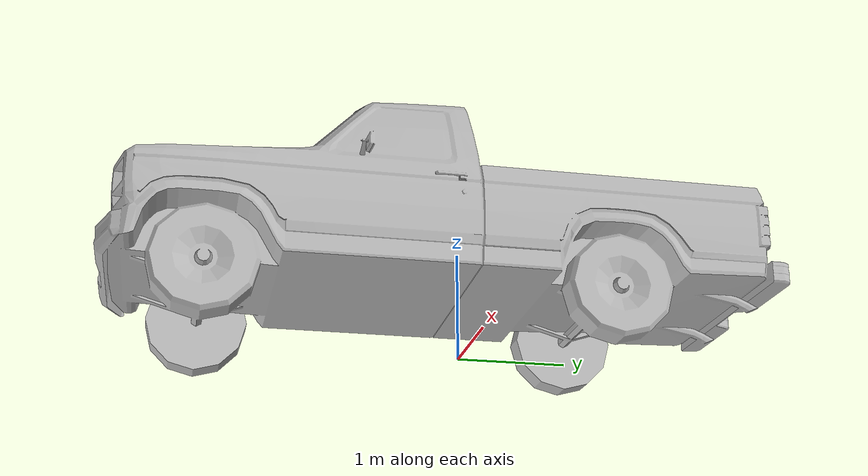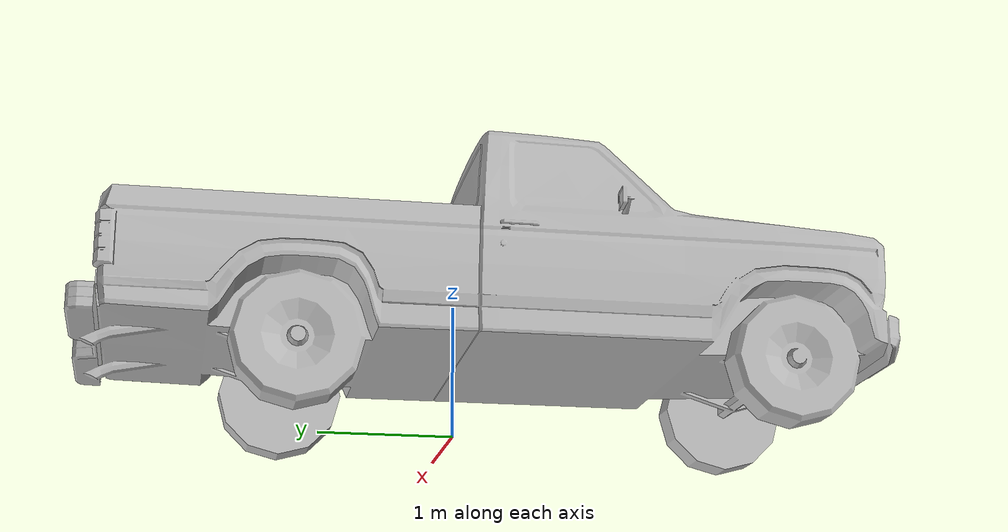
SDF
<?xml version="1.0"?>
<sdf version="1.9">
  <model name="truck">
    <static>true</static>
    <link name="link">
      <visual name="visual">
        <!-- Source OBJ is Y-up; rotate it into Gazebo's Z-up frame. -->
        <pose>0 0 0 1.57079632679 0 0</pose>
        <geometry>
          <mesh>
            <uri>model://cmra_models/truck/truck.obj</uri>
            <scale>0.1 0.1 0.1</scale>
          </mesh>
        </geometry>
      </visual>
    </link>
  </model>
</sdf>
